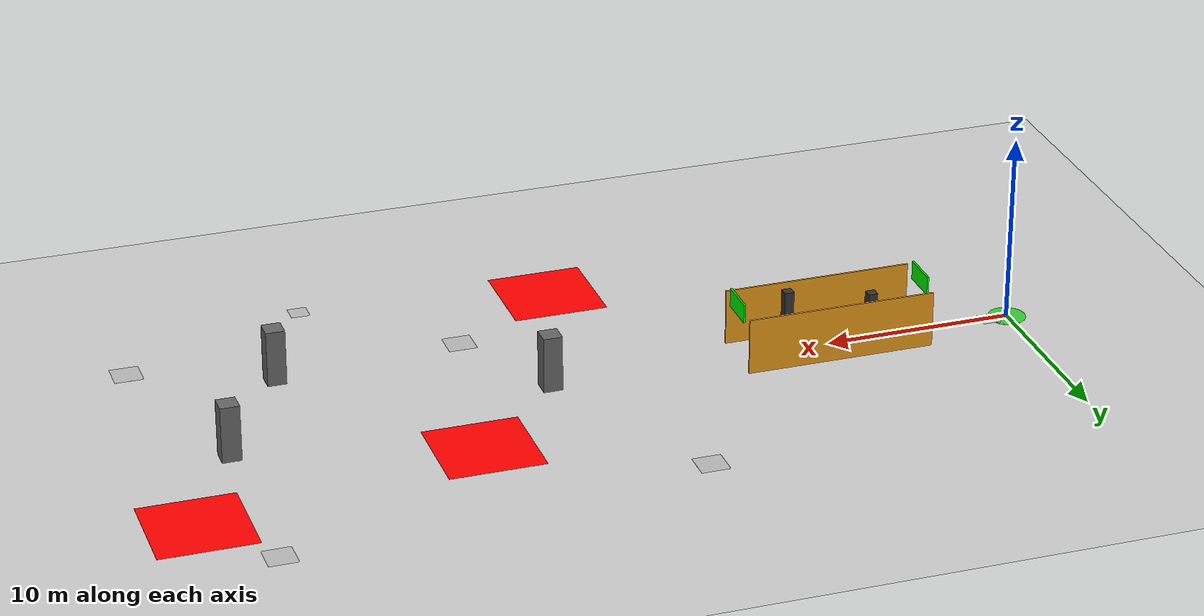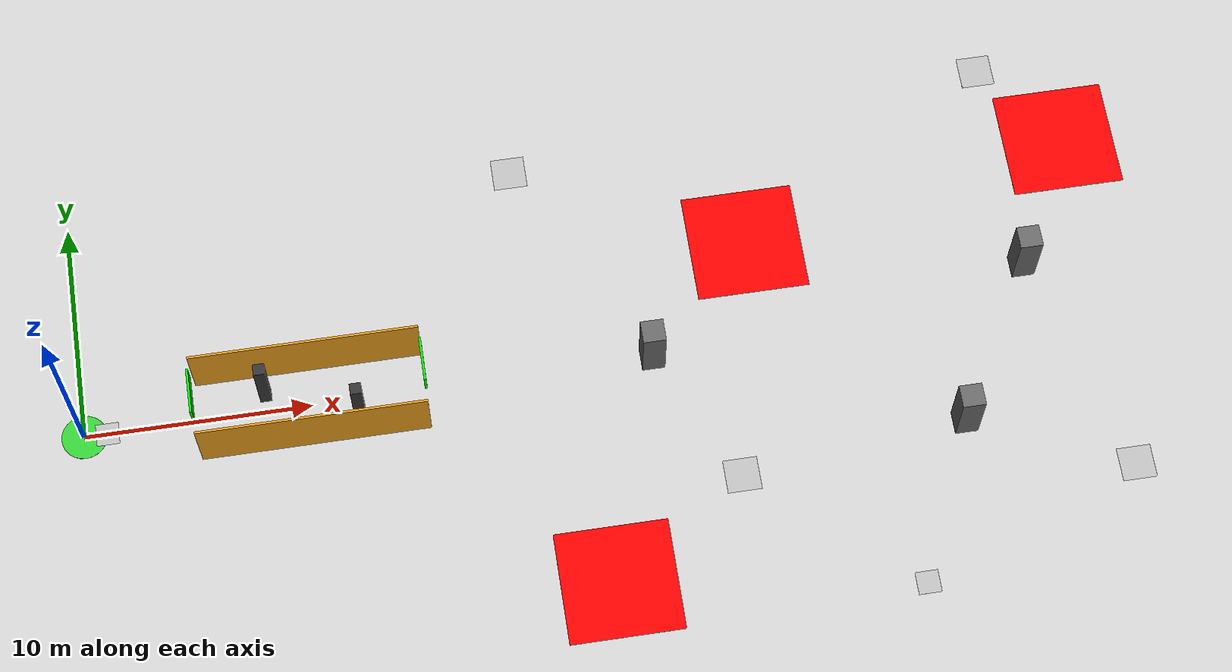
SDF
<?xml version="1.0" ?>
<sdf version="1.7">
  <world name="aerothon_rulebook_expanded">

    <physics type="ode">
      <max_step_size>0.001</max_step_size>
      <real_time_factor>1.0</real_time_factor>
      <real_time_update_rate>1000</real_time_update_rate>
    </physics>

    <scene>
      <ambient>0.7 0.7 0.7 1.0</ambient>
      <shadows>false</shadows>
    </scene>
    <include><uri>model://sun</uri></include>
    <include><uri>model://ground_plane</uri></include>

    <model name="takeoff_pad">
      <static>true</static>
      <pose>0 0 0.001 0 0 0</pose>
      <link name="link">
        <visual name="visual">
          <geometry><cylinder><radius>1.0</radius><length>0.01</length></cylinder></geometry>
          <material><ambient>0.2 0.8 0.2 1</ambient></material>
        </visual>
      </link>
    </model>
    <include>
      <uri>model://qr_code</uri>
      <name>start_qr</name>
      <pose>1 0 0.006 0 0 0</pose>
    </include>

    <include>
      <uri>model://green_banner</uri>
      <name>corridor_entry_banner</name>
      <pose>5 0 3.0 0 0 1.5708</pose>
    </include>

    <model name="corridor_wall_left">
      <static>true</static>
      <pose>10 1.75 1.5 0 0 0</pose>
      <link name="link">
        <visual name="visual">
          <geometry><box><size>10 0.1 3</size></box></geometry>
          <material><ambient>0.9 0.6 0.1 1</ambient></material>
        </visual>
        <collision name="collision"><geometry><box><size>10 0.1 3</size></box></geometry></collision>
      </link>
    </model>

    <model name="corridor_wall_right">
      <static>true</static>
      <pose>10 -1.75 1.5 0 0 0</pose>
      <link name="link">
        <visual name="visual">
          <geometry><box><size>10 0.1 3</size></box></geometry>
          <material><ambient>0.9 0.6 0.1 1</ambient></material>
        </visual>
        <collision name="collision"><geometry><box><size>10 0.1 3</size></box></geometry></collision>
      </link>
    </model>

    <model name="corridor_obstacle_1">
      <static>true</static><pose>8 0.75 1.5 0 0 0</pose>
      <link name="link">
        <visual name="visual"><geometry><box><size>0.5 0.5 3</size></box></geometry><material><ambient>0.2 0.2 0.2 1</ambient></material></visual>
        <collision name="collision"><geometry><box><size>0.5 0.5 3</size></box></geometry></collision>
      </link>
    </model>
    <model name="corridor_obstacle_2">
      <static>true</static><pose>12 -0.75 1.5 0 0 0</pose>
      <link name="link">
        <visual name="visual"><geometry><box><size>0.5 0.5 3</size></box></geometry><material><ambient>0.2 0.2 0.2 1</ambient></material></visual>
        <collision name="collision"><geometry><box><size>0.5 0.5 3</size></box></geometry></collision>
      </link>
    </model>

    <include>
      <uri>model://green_banner</uri>
      <name>corridor_exit_banner</name>
      <pose>15 0 3.0 0 0 1.5708</pose>
    </include>

    <include>
      <uri>model://red_zone</uri>
      <name>hazard_zone_main</name>
      <pose>30 5 0.01 0 0 0</pose>
    </include>
    <include>
      <uri>model://red_zone</uri>
      <name>hazard_zone_small_1</name>
      <pose>22 -10 0.01 0 0 0</pose>
    </include>
    <include>
      <uri>model://red_zone</uri>
      <name>hazard_zone_small_2</name>
      <pose>45 8 0.01 0 0 0</pose>
    </include>

    <model name="field_obstacle_1">
      <static>true</static><pose>25 0 1.5 0 0 0</pose>
      <link name="link">
        <visual name="visual"><geometry><box><size>1 1 3</size></box></geometry><material><ambient>0.4 0.4 0.4 1</ambient></material></visual>
        <collision name="collision"><geometry><box><size>1 1 3</size></box></geometry></collision>
      </link>
    </model>
    <model name="field_obstacle_2">
      <static>true</static><pose>38 -5 1.5 0 0 0</pose>
      <link name="link">
        <visual name="visual"><geometry><box><size>1 1 3</size></box></geometry><material><ambient>0.4 0.4 0.4 1</ambient></material></visual>
        <collision name="collision"><geometry><box><size>1 1 3</size></box></geometry></collision>
      </link>
    </model>
    <model name="field_obstacle_3">
      <static>true</static><pose>42 2 1.5 0 0 0</pose>
      <link name="link">
        <visual name="visual"><geometry><box><size>1 1 3</size></box></geometry><material><ambient>0.4 0.4 0.4 1</ambient></material></visual>
        <collision name="collision"><geometry><box><size>1 1 3</size></box></geometry></collision>
      </link>
    </model>

    <include><uri>model://qr_code</uri><name>target_correct</name><pose>35 -12 0.01 0 0 0</pose></include>

    <include><uri>model://decoy_qr_1</uri><name>decoy_1</name><pose>20 10 0.01 0 0 0</pose></include>
    <include><uri>model://decoy_qr_2</uri><name>decoy_2</name><pose>28 -6 0.01 0 0 0</pose></include>
    <include><uri>model://decoy_qr_1</uri><name>decoy_3</name><pose>45 -8 0.01 0 0 0</pose></include>
    <include><uri>model://decoy_qr_2</uri><name>decoy_4</name><pose>42 12 0.01 0 0 0</pose></include>

  </world>
</sdf>

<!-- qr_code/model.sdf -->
<sdf version="1.6">
  <model name="start_qr_target">
    <static>true</static>
    <link name="link">
      <visual name="visual">
        <geometry>
          <plane>
            <normal>0 0 1</normal>
            <size>1 1</size>
          </plane>
        </geometry>
        <material>
          <script>
            <uri>model://qr_code/materials/scripts</uri>
            <uri>model://qr_code/materials/textures</uri>
            <name>AeroTHON/StartQR</name>
          </script>
        </material>
      </visual>
    </link>
  </model>
</sdf>

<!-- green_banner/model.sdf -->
<sdf version="1.6">
  <model name="green_banner">
    <static>true</static>
    <link name="link">
      <visual name="visual">
        <geometry><box><size>2 0.1 1</size></box></geometry>
        <material>
          <ambient>0 1 0 1</ambient> <diffuse>0 1 0 1</diffuse>
        </material>
      </visual>
    </link>
  </model>
</sdf>

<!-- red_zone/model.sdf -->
<sdf version="1.6">
  <model name="red_zone">
    <static>true</static>
    <link name="link">
      <visual name="visual">
        <geometry><plane><normal>0 0 1</normal><size>5 5</size></plane></geometry>
        <material>
          <ambient>1 0 0 1</ambient> <diffuse>1 0 0 1</diffuse>
        </material>
      </visual>
    </link>
  </model>
</sdf>

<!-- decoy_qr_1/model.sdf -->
<sdf version="1.6">
  <model name="decoy_qr_1">
    <static>true</static>
    <link name="link">
      <visual name="visual">
        <geometry><plane><normal>0 0 1</normal><size>1.5 1.5</size></plane></geometry>
        <material><script>
          <uri>model://decoy_qr_1/materials/scripts</uri>
          <uri>model://qr_code/materials/textures</uri>
          <name>AeroTHON/DecoyQR1</name>
        </script></material>
      </visual>
    </link>
  </model>
</sdf>

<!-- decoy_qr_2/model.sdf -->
<sdf version="1.6">
  <model name="decoy_qr_2">
    <static>true</static>
    <link name="link">
      <visual name="visual">
        <geometry><plane><normal>0 0 1</normal><size>1.5 1.5</size></plane></geometry>
        <material><script>
          <uri>model://decoy_qr_2/materials/scripts</uri>
          <uri>model://qr_code/materials/textures</uri>
          <name>AeroTHON/DecoyQR2</name>
        </script></material>
      </visual>
    </link>
  </model>
</sdf>
